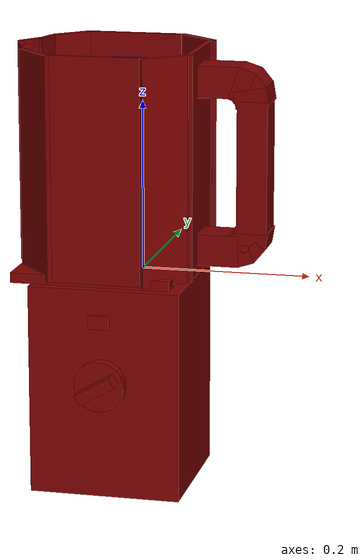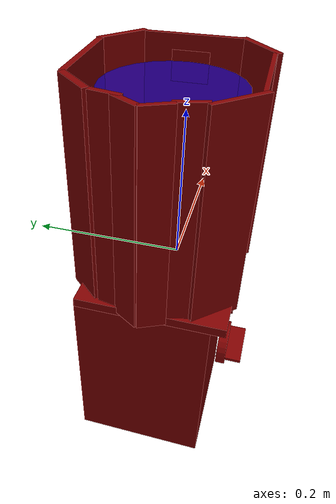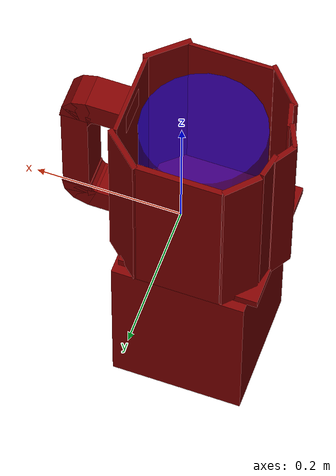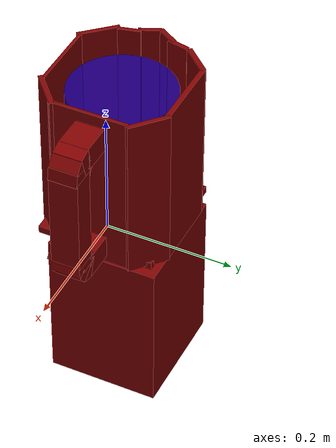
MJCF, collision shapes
<?xml version='1.0' encoding='UTF-8'?>
<mujoco model="model">
  <option timestep="0.0005" gravity="0.0 0.0 -9.81"/>
  <compiler angle="radian"/>
  <asset>
    <mesh file="visuals/blade.obj" name="blade_vis"/>
    <mesh file="visuals/Body001.obj" name="Body001_vis"/>
    <mesh file="visuals/knob_speed.obj" name="knob_speed_vis"/>
    <mesh file="visuals/pitcher.obj" name="pitcher_vis"/>
    <mesh file="visuals/pitcher_main.obj" name="pitcher_main_vis"/>
    <mesh file="visuals/power_button.obj" name="power_button_vis"/>
    <texture file="visuals/T_BC001.png" name="Body001_material" type="2d"/>
    <material name="Body001_material" rgba="1 1 1 1.0" texture="Body001_material" shininess="0.4472135901451111" specular="0.3103448502657381"/>
    <texture file="visuals/T_BC001.png" name="knob_speed_material" type="2d"/>
    <material name="knob_speed_material" rgba="1 1 1 1.0" texture="knob_speed_material" shininess="0.4472135901451111" specular="0.3103448502657381"/>
    <texture file="visuals/T_BC001.png" name="pitcher_material" type="2d"/>
    <material name="pitcher_material" rgba="1 1 1 1.0" texture="pitcher_material" shininess="0.4472135901451111" specular="0.3103448502657381"/>
    <texture file="visuals/T_BC001.png" name="blade_material" type="2d"/>
    <material name="blade_material" rgba="1 1 1 1.0" texture="blade_material" shininess="0.4472135901451111" specular="0.3103448502657381"/>
    <texture file="visuals/T_BC001.png" name="pitcher_main_material" type="2d"/>
    <material name="pitcher_main_material" rgba="1 1 1 0.699999988079071" texture="pitcher_main_material" shininess="0.4472135901451111" specular="0.3103448502657381"/>
    <texture file="visuals/T_BC001.png" name="power_button_material" type="2d"/>
    <material name="power_button_material" rgba="1 1 1 1.0" texture="power_button_material" shininess="0.4472135901451111" specular="0.3103448502657381"/>
  </asset>
  <default>
    <default class="visual">
      <geom conaffinity="0" contype="0" group="1" type="mesh"/>
    </default>
    <default class="collision">
      <geom group="0" rgba="0.5 0 0 0.5" density="1000" solref="0.001 1" solimp="0.998 0.998 0.001"/>
    </default>
    <default class="spawn">
      <geom group="0" rgba="1 1 1 0.5" contype="0" conaffinity="0"/>
      <site group="0" rgba="1 1 1 0.5"/>
    </default>
    <default class="region">
      <geom group="1" conaffinity="0" contype="0" rgba="0 1 0 0" mass="0"/>
    </default>
  </default>
  <worldbody>
    <body>
      <body name="object">
        <geom mesh="Body001_vis" type="mesh" solimp="0.998 0.998 0.001" solref="0.001 1" friction="0.95 0.3 0.1" class="visual" material="Body001_material"/>
        <geom type="box" pos="-0.03198971 0.01790235 -0.13977916" size="0.09086106717586517 0.08694253116846085 0.1265697330236435" quat="1.0 0.0 0.0 0.0" class="collision"/>
        <body name="knob_speed">
          <joint axis="1.1635820129640706e-07 1.0 2.0153815682988352e-07" pos="-0.03290008 -0.09221647 -0.12512786" limited="true" name="knob_speed_joint" range="0.0 4.153883619746504" type="hinge" damping="0.05" armature="0.001"/>
          <geom mesh="knob_speed_vis" type="mesh" solimp="0.998 0.998 0.001" solref="0.001 1" friction="0.95 0.3 0.1" class="visual" material="knob_speed_material"/>
          <geom type="cylinder" pos="-0.03249119 -0.08238636 -0.12490727" size="0.030412523075938225 0.006172697059810162" quat="0.7071067094802856 0.7071068286895752 0.0 0.0" class="collision"/>
          <geom class="collision" type="box" pos="-0.03262950 -0.09542076 -0.12484283" size="0.006515718065202236 0.014615816064178944 0.023852845653891563" quat="0.8647358417510986 -4.5700311651554904e-15 0.5022270083427429 6.747864489398125e-08" name="knob_speed_main"/>
        </body>
        <body name="pitcher">
          <geom mesh="pitcher_vis" type="mesh" solimp="0.998 0.998 0.001" solref="0.001 1" friction="0.95 0.3 0.1" class="visual" material="pitcher_material"/>
          <geom type="cylinder" pos="-0.03149403 0.01057824 -0.00005377" size="0.053082868456840515 0.012121236883103848" quat="1.0 0.0 0.0 0.0" class="collision"/>
          <geom class="collision" type="box" pos="0.08952594 0.01013495 0.22714056" size="0.02718629129230976 0.02258792333304882 0.018655451014637947" quat="1.0 0.0 0.0 0.0" name="pitcher_handle_0"/>
          <geom class="collision" type="box" pos="0.12019345 0.01013494 0.22375287" size="0.010096864774823189 0.02258792333304882 0.01981128565967083" quat="0.9877328276634216 -5.3838896435141025e-15 0.15615315735340118 2.0980564841011073e-08" name="pitcher_handle_1"/>
          <geom class="collision" type="box" pos="0.13264304 0.01013495 0.12791645" size="0.017922060564160347 0.022743331268429756 0.07793086022138596" quat="1.0 0.0 0.0 0.0" name="pitcher_handle_4"/>
          <geom class="collision" type="box" pos="0.12632975 0.01013495 0.21811956" size="0.010096863843500614 0.02258792333304882 0.021020449697971344" quat="0.9043251872062683 3.557649339784152e-15 0.42684417963027954 5.735028807407616e-08" name="pitcher_handle_2"/>
          <geom class="collision" type="box" pos="0.13125887 0.01013495 0.20997139" size="0.010096864774823189 0.02258792333304882 0.01981128379702568" quat="0.7645447850227356 4.080752324052937e-14 0.6445705890655518 8.660373396196519e-08" name="pitcher_handle_3"/>
          <geom class="collision" type="box" pos="0.08952594 0.01013495 0.02767230" size="0.02718629129230976 0.02258792705833912 0.018655452877283096" quat="1.0 0.0 0.0 0.0" name="pitcher_handle_8"/>
          <geom class="collision" type="box" pos="0.12019345 0.01013495 0.03105999" size="0.010096864774823189 0.02258792333304882 0.01981128565967083" quat="6.734673263508739e-08 -0.9877328276634216 3.391201985891712e-08 -0.15615315735340118" name="pitcher_handle_7"/>
          <geom class="collision" type="box" pos="0.12632975 0.01013495 0.03669330" size="0.010096863843500614 0.02258792333304882 0.021020449697971344" quat="1.0210805356791752e-07 -0.9043251872062683 7.360668519140745e-08 -0.42684417963027954" name="pitcher_handle_6"/>
          <geom class="collision" type="box" pos="0.13125887 0.01013494 0.04484148" size="0.010096864774823189 0.02258792333304882 0.01981128379702568" quat="6.84065710743198e-08 -0.7645447850227356 1.262591382555911e-07 -0.6445705890655518" name="pitcher_handle_5"/>
          <body name="blade">
            <geom mesh="blade_vis" type="mesh" solimp="0.998 0.998 0.001" solref="0.001 1" friction="0.95 0.3 0.1" class="visual" material="blade_material"/>
            <geom type="box" pos="-0.03206507 0.01036866 0.01560994" size="0.015457836911082268 0.00963042676448822 0.0011948224855586886" quat="1.0 0.0 0.0 0.0" class="collision"/>
            <geom type="box" pos="-0.03235719 0.03373652 0.03302793" size="0.019890112802386284 0.00963042676448822 0.0011948226019740105" quat="0.5970932841300964 0.378787100315094 -0.3787870407104492 0.5970932245254517" class="collision"/>
            <geom type="box" pos="-0.03235719 0.01066077 0.01560994" size="0.009630427695810795 0.015457837842404842 0.0011948224855586886" quat="1.0 0.0 0.0 0.0" class="collision"/>
            <geom type="box" pos="-0.03235719 -0.01338489 0.03302793" size="0.019890112802386284 0.00963042676448822 0.0011948226019740105" quat="0.5970932245254517 -0.37878715991973877 0.3787870705127716 0.5970932245254517" class="collision"/>
            <geom type="box" pos="-0.05633476 0.01028198 0.03302793" size="0.019890110939741135 0.00963042676448822 0.0011948224855586886" quat="0.8444173336029053 -3.8374590616285786e-08 0.5356858968734741 -5.731255914298572e-09" class="collision"/>
            <geom type="box" pos="-0.00876799 0.01028198 0.03302793" size="0.019890112802386284 0.00963042676448822 0.0011948226019740105" quat="1.0835157837618681e-07 0.5356858968734741 1.1074719452608406e-07 -0.8444173336029053" class="collision"/>
          </body>
          <body name="pitcher_main">
            <geom class="region" type="cylinder" size="0.08218567073345184 0.09207122027873993" pos="-0.03192969 0.01003869 0.14510909" rgba="0 0 1 0.5" name="reg_int"/>
            <geom mesh="pitcher_main_vis" type="mesh" solimp="0.998 0.998 0.001" solref="0.001 1" friction="0.95 0.3 0.1" class="visual" material="pitcher_main_material"/>
            <geom type="box" pos="-0.03444730 0.10760578 0.13156133" size="0.05650893598794937 0.003762295236811042 0.1325371116399765" quat="1.0 0.0 0.0 0.0" class="collision"/>
            <geom type="box" pos="-0.10930473 0.08901773 0.13156133" size="0.026642045006155968 0.003986053634434938 0.13253946602344513" quat="0.9172716736793518 0.0 0.0 0.398262083530426" class="collision"/>
            <geom type="box" pos="0.04651564 0.08913537 0.13156133" size="0.032513655722141266 0.0035143764689564705 0.13253946602344513" quat="0.933960497379303 0.0 -0.0 -0.35737624764442444" class="collision"/>
            <geom type="box" pos="-0.03444730 -0.08656744 0.13156133" size="0.05650905892252922 0.002329918323084712 0.1325373649597168" quat="1.0 0.0 0.0 0.0" class="collision"/>
            <geom type="box" pos="0.04454469 -0.07036592 0.13156133" size="0.032513655722141266 0.003495334181934595 0.13253946602344513" quat="0.933960497379303 0.0 0.0 0.35737624764442444" class="collision"/>
            <geom type="box" pos="-0.11141782 -0.06778160 0.13156133" size="0.032513655722141266 0.002979870652779937 0.13253946602344513" quat="0.9170170426368713 0.0 -0.0 -0.3988479971885681" class="collision"/>
            <geom type="box" pos="0.06505544 0.00538297 0.13156133" size="0.002503257244825363 0.06101164594292641 0.1325376182794571" quat="1.0 0.0 0.0 0.0" class="collision"/>
            <geom type="box" pos="-0.13204603 -0.02833338 0.13156133" size="0.017218006774783134 0.0028745406307280064 0.13253946602344513" quat="0.6149239540100098 0.0 0.0 0.788586437702179" class="collision"/>
            <geom type="box" pos="-0.14528837 -0.00115176 0.13156133" size="0.017218004912137985 0.00298977829515934 0.13253946602344513" quat="0.5351915955543518 0.0 0.0 0.8447307348251343" class="collision"/>
            <geom type="box" pos="-0.14302323 0.02812075 0.13156133" size="0.017218004912137985 0.0035925183910876513 0.13253946602344513" quat="0.8767032623291016 0.0 0.0 0.481031596660614" class="collision"/>
            <geom type="box" pos="-0.13092578 0.05048494 0.13156133" size="0.017218004912137985 0.003295283764600754 0.13253946602344513" quat="0.7761645317077637 0.0 0.0 0.6305304169654846" class="collision"/>
            <geom type="box" pos="-0.04319091 0.00459594 0.00115974" size="0.09490712732076645 0.0923057422041893 0.006025748793035746" quat="1.0 0.0 0.0 0.0" class="collision"/>
          </body>
        </body>
        <body name="power_button">
          <joint axis="0.0 1.0 0.0" pos="-0.03248132 -0.07664007 -0.04654668" limited="true" name="power_button_joint" range="0.0 0.01" type="slide" damping="1" frictionloss="1" armature=".01" stiffness="0.5" springref="-0.1"/>
          <geom mesh="power_button_vis" type="mesh" solimp="0.998 0.998 0.001" solref="0.001 1" friction="0.95 0.3 0.1" class="visual" material="power_button_material"/>
          <geom class="collision" type="box" pos="-0.03256877 -0.08609908 -0.04693687" size="0.012408987618982792 0.0025141423102468252 0.008026663213968277" quat="1.0 0.0 0.0 0.0" name="power_button_main"/>
        </body>
        <geom class="region" name="reg_main" type="box" pos="-0.041557159999999996 0.010226100000000002 0.0" size="0.11028239 0.10077628 0.28032143"/>
      </body>
      <site rgba="0 1 0 0" size="0.005" pos="-0.03300150 0.01006190 0.27199350" name="anchor_site"/>
    </body>
  </worldbody>
  <actuator>
    <motor name="knob_speed_joint_actuator" joint="knob_speed_joint" gear="10"/>
    <motor name="power_button_joint_actuator" joint="power_button_joint" gear="0.5"/>
  </actuator>
</mujoco>
